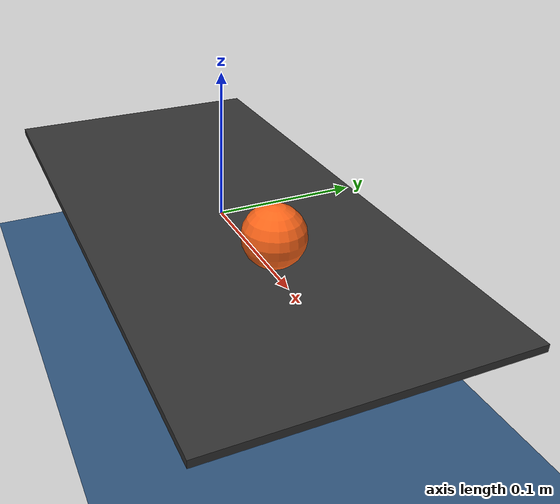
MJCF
<mujoco model="ball_balance_2d">

    <!-- Compiler -->

    <compiler angle="degree"/>

    <!-- Simulation -->

    <!-- Slower + more stable -->
    <option timestep="0.0005"
            gravity="0 0 -9.81"
            integrator="RK4"
            iterations="400"
            noslip_iterations="30"/>

    <!-- Visual -->

    <visual>

        <global offwidth="1920"
                offheight="1080"/>

        <rgba haze="0.6 0.8 1 1"/>

        <map fogstart="10"
             fogend="40"/>

        <quality shadowsize="4096"/>

        <headlight ambient="0.5 0.5 0.5"
                   diffuse="0.9 0.9 0.9"
                   specular="0.15 0.15 0.15"/>

    </visual>

    <!-- Defaults -->

    <default>

        <joint damping="0.05"/>

        <geom condim="6"
              friction="1.2 0.01 0.002"
              solref="0.02 1"
              solimp="0.995 0.999 0.0001"
              margin="0.0005"/>

    </default>

    <!-- Assets -->

    <asset>

        <!-- Sky -->
        <texture type="skybox"
                 builtin="gradient"
                 rgb1="0.55 0.75 1"
                 rgb2="0.05 0.15 0.35"
                 width="800"
                 height="800"/>

        <!-- Ground -->
        <texture name="grid"
                 type="2d"
                 builtin="checker"
                 width="512"
                 height="512"
                 rgb1="0.15 0.28 0.42"
                 rgb2="0.22 0.38 0.55"/>

        <material name="grid_mat"
                  texture="grid"
                  texrepeat="80 80"
                  reflectance="0.05"/>

        <!-- Plate -->
        <material name="plate_mat"
                  rgba="0.20 0.20 0.20 1"/>

        <!-- Ball -->
        <material name="ball_mat"
                  rgba="1 0.4 0.1 1"/>

    </asset>

    <!-- World -->

    <worldbody>

        <!-- Infinite floor -->
        <geom type="plane"
              size="100 100 1"
              pos="0 0 -0.1"
              material="grid_mat"/>

        <!-- Light -->
        <light directional="true"
               diffuse="1 1 1"
               specular="0.2 0.2 0.2"
               pos="0 -5 5"
               dir="0 1 -1"/>

        <!-- Fixed side camera -->
        <camera name="side"
                mode="fixed"
                pos="0 -1.5 0.20"
                xyaxes="1 0 0 0 0 1"/>

        <!-- Plate -->

        <body name="plate_body"
              pos="0 0 0">

            <joint name="plate_hinge"
                   type="hinge"
                   axis="0 1 0"
                   limited="true"
                   range="-15 15"
                   damping="0.25"/>

            <geom name="plate"
                  type="box"
                  size="0.20 0.10 0.0025"

                  mass="1.2"

                  friction="1.5 0.01 0.002"

                  solref="0.02 1"
                  solimp="0.995 0.999 0.0001"

                  material="plate_mat"/>

        </body>

        <!-- Ball -->

        <body name="ball"
              pos="0.08 0 0.025">

            <freejoint/>

            <geom name="ball_geom"
                  type="sphere"
                  size="0.02"

                  mass="0.005"

                  friction="1.8 0.01 0.002"

                  solref="0.02 1"
                  solimp="0.995 0.999 0.0001"

                  priority="1"

                  material="ball_mat"/>

        </body>

    </worldbody>

    <!-- PID Actuator -->

    <actuator>

        <!-- MUCH smoother -->
        <position name="tilt_control"
                  joint="plate_hinge"
                  kp="4"
                  ctrlrange="-0.12 0.12"/>

    </actuator>

    <!-- Sensors -->

    <sensor>

        <framepos objtype="body"
                  objname="ball"/>

        <framelinvel objtype="body"
                     objname="ball"/>

        <jointpos joint="plate_hinge"/>

    </sensor>

</mujoco>
